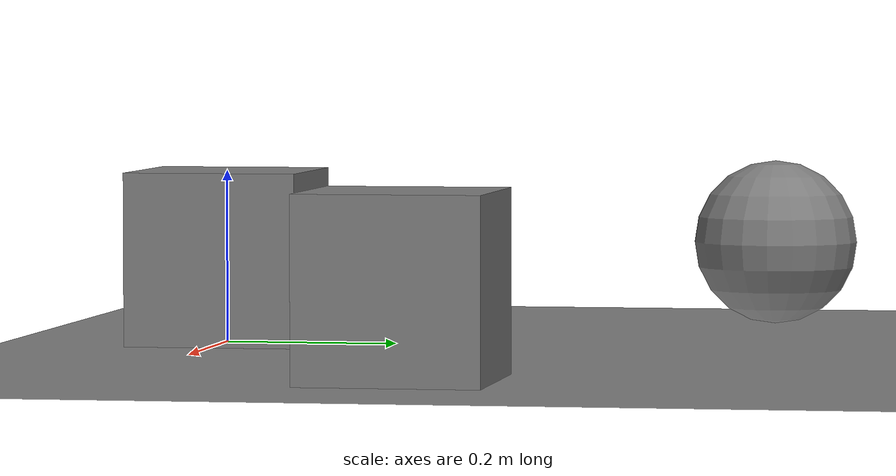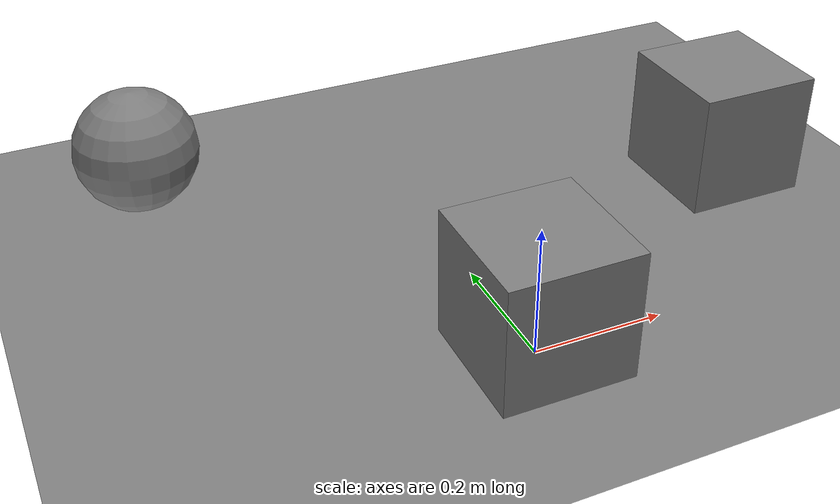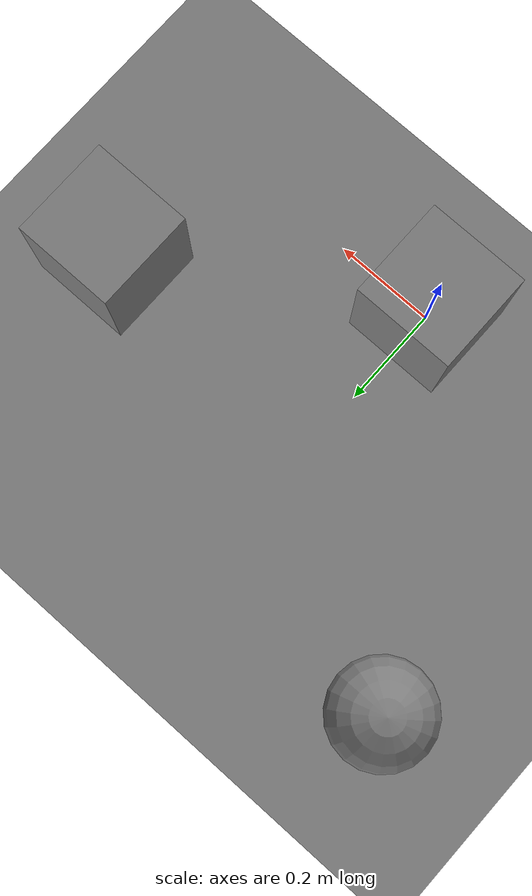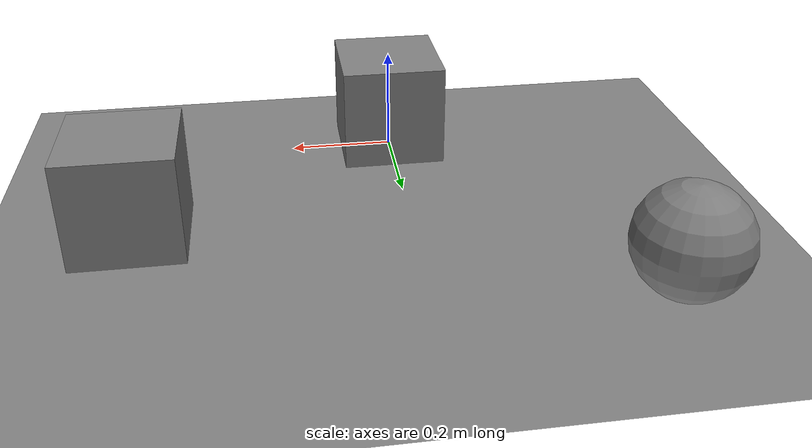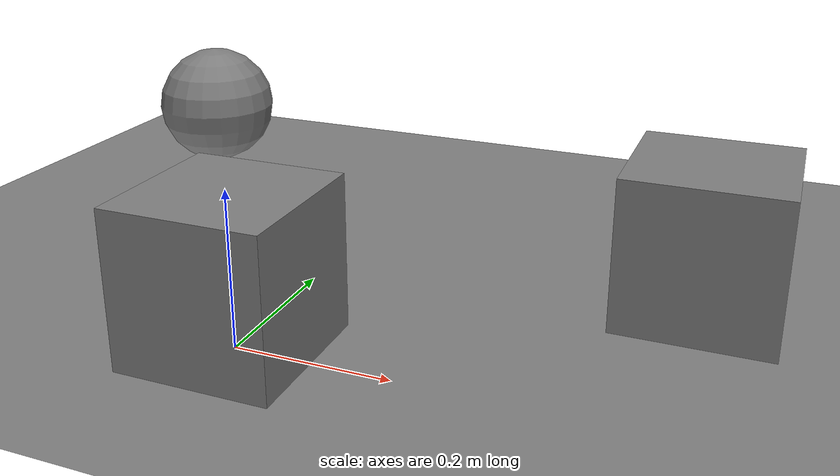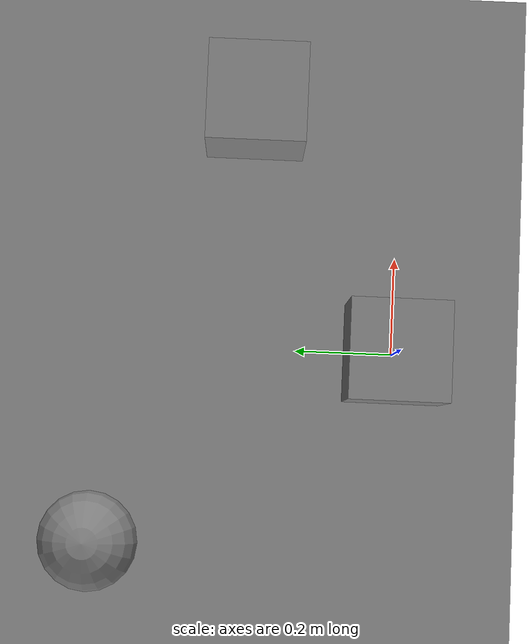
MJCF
<mujoco>
  <worldbody>
    <geom type="plane" size="5 5 .1"/>
    <body pos="0 0 .1"><freejoint/><geom type="box" size=".1 .1 .1"/></body>
    <body pos=".5 .3 .1"><freejoint/><geom type="box" size=".1 .1 .1"/></body>
    <body pos="-.4 .6 .1"><freejoint/><geom type="sphere" size=".1"/></body>
  </worldbody>
</mujoco>
